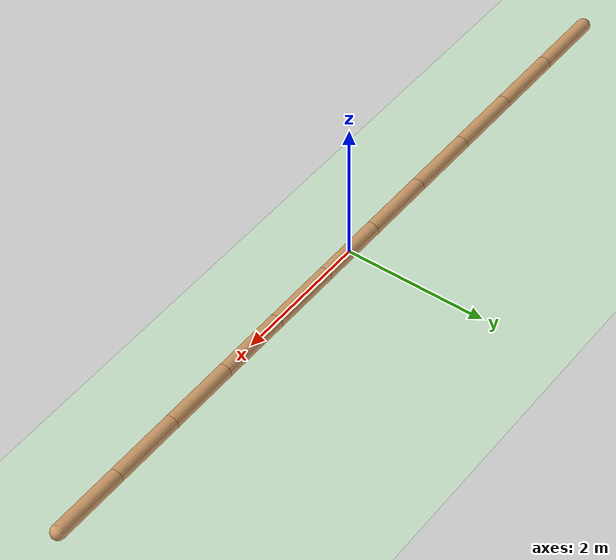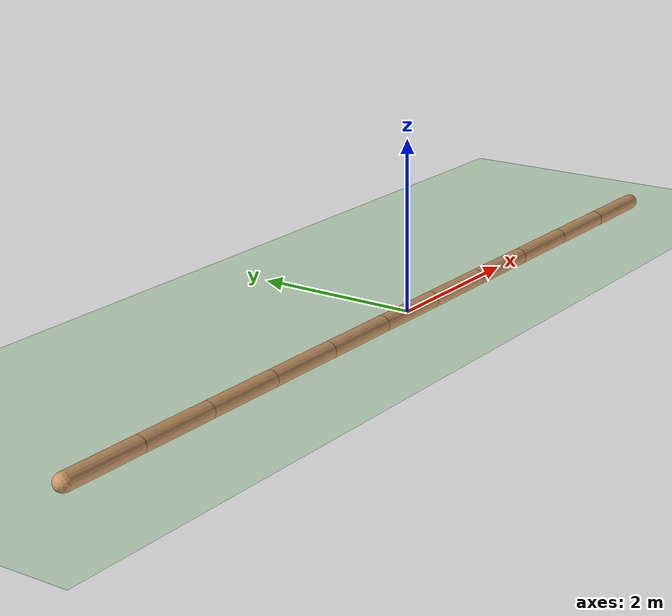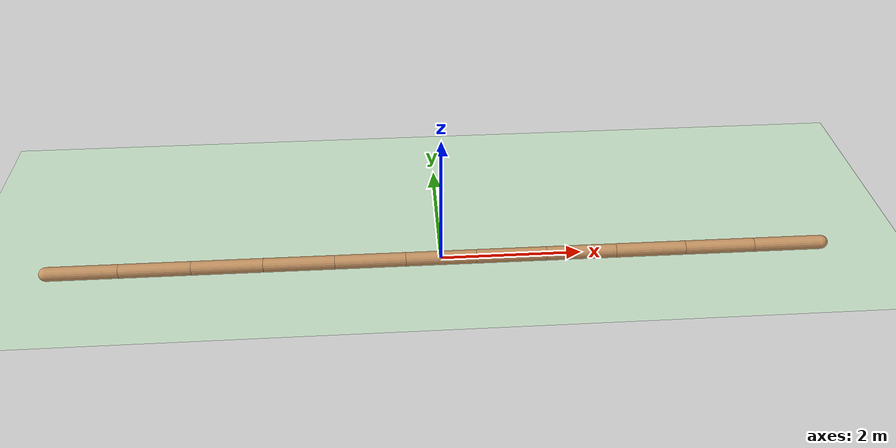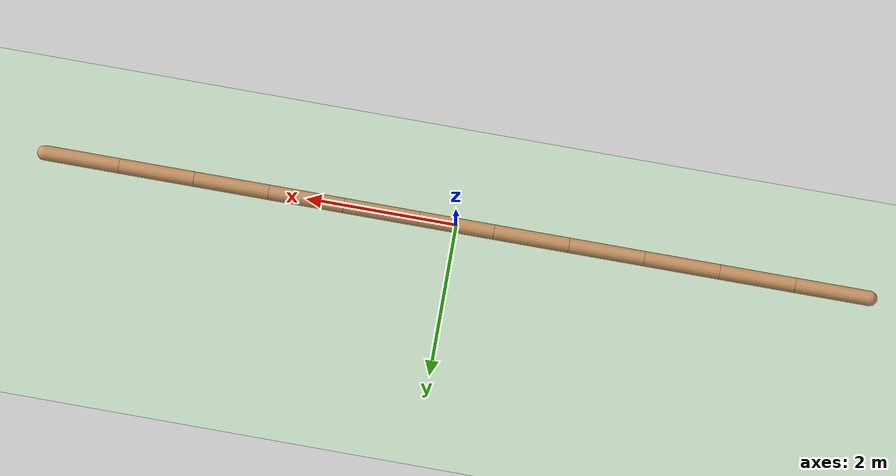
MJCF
<mujoco model="swimmer">
  <compiler angle="degree" coordinate="local" inertiafromgeom="true"/>
  <option density="4000" integrator="RK4" timestep="0.01" viscosity="0.1"/>
  <default>
    <geom conaffinity="0" condim="1" contype="0" material="geom" rgba="0.8 0.6 .4 1"/>
    <joint armature="0.1"/>
  </default>
  <asset>
    <texture builtin="gradient" height="100" rgb1="1 1 1" rgb2="0 0 0" type="skybox" width="100"/>
    <texture builtin="flat" height="1278" mark="cross" markrgb="1 1 1" name="texgeom" random="0.01" rgb1="0.8 0.6 0.4" rgb2="0.8 0.6 0.4" type="cube" width="127"/>
    <texture builtin="checker" height="100" name="texplane" rgb1="0 0 0" rgb2="0.8 0.8 0.8" type="2d" width="100"/>
    <material name="MatPlane" reflectance="0.5" shininess="1" specular="1" texrepeat="30 30" texture="texplane"/>
    <material name="geom" texture="texgeom" texuniform="true"/>
  </asset>
  <worldbody>
    <light cutoff="100" diffuse="1 1 1" dir="-0 0 -1.3" directional="true" exponent="1" pos="0 0 1.3" specular=".1 .1 .1"/>
    <geom condim="3" material="MatPlane" name="floor" pos="0 0 -0.1" rgba="0.8 0.9 0.8 1" size="40 40 0.1" type="plane"/>
    <body name="torso" pos="5.5 0 0">
      <camera name="track" mode="trackcom" pos="-5.5 -11 11" xyaxes="1 0 0 0 1 1"/>
      <geom density="1000" fromto="0 0 0 -1 0 0" size="0.1" type="capsule"/>
      <joint axis="1 0 0" name="slider1" pos="0 0 0" type="slide"/>
      <joint axis="0 1 0" name="slider2" pos="0 0 0" type="slide"/>
      <joint axis="0 0 1" name="free_body_rot" pos="0 0 0" type="hinge"/>
      <body name="segment_1" pos="-1 0 0">
        <geom density="1000" fromto="0 0 0 -1 0 0" size="0.1" type="capsule"/>
        <joint name="motor_1_rot" axis="0 0 1" limited="true" pos="0 0 0" range="-100 100" type="hinge"/>
        <body name="segment_2" pos="-1 0 0">
          <geom density="1000" fromto="0 0 0 -1 0 0" size="0.1" type="capsule"/>
          <joint name="motor_2_rot" axis="0 0 1" limited="true" pos="0 0 0" range="-100 100" type="hinge"/>
          <body name="segment_3" pos="-1 0 0">
            <geom density="1000" fromto="0 0 0 -1 0 0" size="0.1" type="capsule"/>
            <joint name="motor_3_rot" axis="0 0 1" limited="true" pos="0 0 0" range="-100 100" type="hinge"/>
            <body name="segment_4" pos="-1 0 0">
              <geom density="1000" fromto="0 0 0 -1 0 0" size="0.1" type="capsule"/>
              <joint name="motor_4_rot" axis="0 0 1" limited="true" pos="0 0 0" range="-100 100" type="hinge"/>
              <body name="segment_5" pos="-1 0 0">
                <geom density="1000" fromto="0 0 0 -1 0 0" size="0.1" type="capsule"/>
                <joint name="motor_5_rot" axis="0 0 1" limited="true" pos="0 0 0" range="-100 100" type="hinge"/>
                <body name="segment_6" pos="-1 0 0">
                  <geom density="1000" fromto="0 0 0 -1 0 0" size="0.1" type="capsule"/>
                  <joint name="motor_6_rot" axis="0 0 1" limited="true" pos="0 0 0" range="-100 100" type="hinge"/>
                  <body name="segment_7" pos="-1 0 0">
                    <geom density="1000" fromto="0 0 0 -1 0 0" size="0.1" type="capsule"/>
                    <joint name="motor_7_rot" axis="0 0 1" limited="true" pos="0 0 0" range="-100 100" type="hinge"/>
                    <body name="segment_8" pos="-1 0 0">
                      <geom density="1000" fromto="0 0 0 -1 0 0" size="0.1" type="capsule"/>
                      <joint name="motor_8_rot" axis="0 0 1" limited="true" pos="0 0 0" range="-100 100" type="hinge"/>
                      <body name="segment_9" pos="-1 0 0">
                        <geom density="1000" fromto="0 0 0 -1 0 0" size="0.1" type="capsule"/>
                        <joint name="motor_9_rot" axis="0 0 1" limited="true" pos="0 0 0" range="-100 100" type="hinge"/>
                        <body name="segment_10" pos="-1 0 0">
                          <geom density="1000" fromto="0 0 0 -1 0 0" size="0.1" type="capsule"/>
                          <joint name="motor_10_rot" axis="0 0 1" limited="true" pos="0 0 0" range="-100 100" type="hinge"/>
                        </body>
                      </body>
                    </body>
                  </body>
                </body>
              </body>
            </body>
          </body>
        </body>
      </body>
    </body>
  </worldbody>
  <actuator>
    <motor ctrllimited="true" ctrlrange="-1 1" gear="150" joint="motor_1_rot"/>
    <motor ctrllimited="true" ctrlrange="-1 1" gear="150" joint="motor_2_rot"/>
    <motor ctrllimited="true" ctrlrange="-1 1" gear="150" joint="motor_3_rot"/>
    <motor ctrllimited="true" ctrlrange="-1 1" gear="150" joint="motor_4_rot"/>
    <motor ctrllimited="true" ctrlrange="-1 1" gear="150" joint="motor_5_rot"/>
    <motor ctrllimited="true" ctrlrange="-1 1" gear="150" joint="motor_6_rot"/>
    <motor ctrllimited="true" ctrlrange="-1 1" gear="150" joint="motor_7_rot"/>
    <motor ctrllimited="true" ctrlrange="-1 1" gear="150" joint="motor_8_rot"/>
    <motor ctrllimited="true" ctrlrange="-1 1" gear="150" joint="motor_9_rot"/>
    <motor ctrllimited="true" ctrlrange="-1 1" gear="150" joint="motor_10_rot"/>
  </actuator>
</mujoco>
